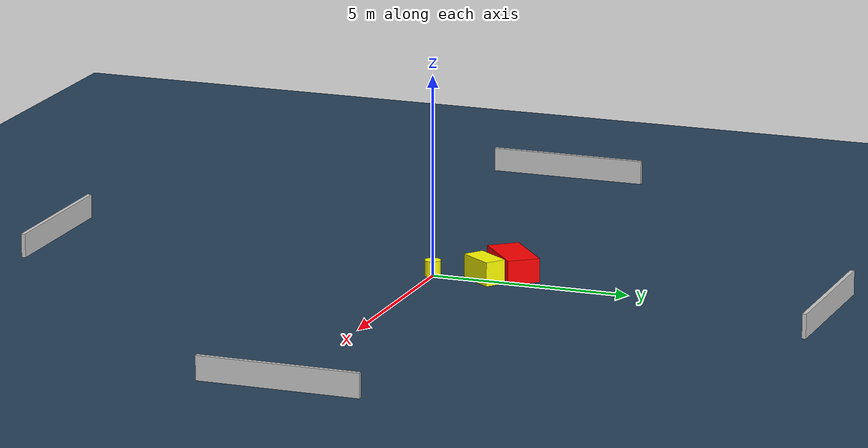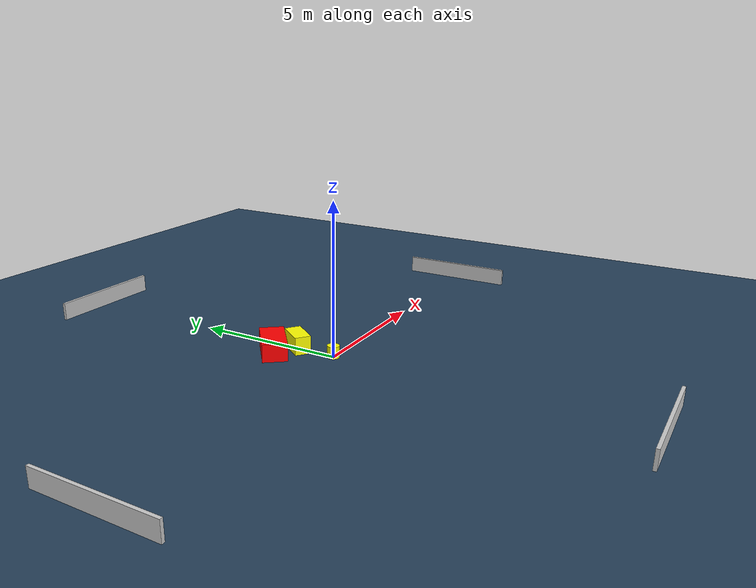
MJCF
<?xml version="1.0" ?>
<mujoco model="generated_environment">
  <option timestep="0.01" integrator="RK4" cone="elliptic"/>
  <default>
    <geom density="1"/>
  </default>
  <asset>
    <texture builtin="gradient" height="3072" name="skybox" rgb1="0.3 0.5 0.7" rgb2="0 0 0" type="skybox" width="512"/>
    <texture builtin="checker" height="300" name="groundplane" rgb1="0.2 0.3 0.4" rgb2="0.1 0.2 0.3" type="2d" width="300"/>
    <material name="groundplane" reflectance="0.2" texrepeat="5 5" texture="groundplane"/>
  </asset>
  <worldbody>
    <light dir="0 0 -1" directional="true" pos="0 0 1.5"/>
    <geom condim="3" friction="0.5 0.005 0.001" material="groundplane" name="floor" pos="0 0 0" size="0 0 0.05" type="plane"/>
    <body name="walls">
      <geom name="wall_1" condim="4" pos="-10.0 0.0 0.3" rgba="0.800000011920929 0.800000011920929 0.800000011920929 1.0" size="0.05 2.0 0.3" type="box"/>
      <geom name="wall_2" condim="4" pos="10.0 0.0 0.3" rgba="0.800000011920929 0.800000011920929 0.800000011920929 1.0" size="0.05 2.0 0.3" type="box"/>
      <geom name="wall_3" condim="4" pos="0.0 -10.0 0.3" rgba="0.800000011920929 0.800000011920929 0.800000011920929 1.0" size="2.0 0.05 0.3" type="box"/>
      <geom name="wall_4" condim="4" pos="0.0 10.0 0.3" rgba="0.800000011920929 0.800000011920929 0.800000011920929 1.0" size="2.0 0.05 0.3" type="box"/>
    </body>
    <body name="robot">
      <joint name="joint_x" type="slide" pos="0 0 0" axis="1 0 0"/>
      <joint name="joint_y" type="slide" pos="0 0 0" axis="0 1 0"/>
      <geom name="robot" type="cylinder" pos="0.0 0.0 0.2" size="0.2 0.2 0.0" mass="5.0" friction="1.0 0.005 0.0001" condim="4" rgba="1.0 1.0 0.0 1.0"/>
    </body>
    <body name="obstacle_1_movable">
      <geom name="obstacle_1_movable" condim="4" pos="-0.034882188146519076 1.3210263704647884 0.3" euler="0 0 143.7656062042891" friction="0.0 0.005 0.001" rgba="1.0 1.0 0.0 1.0" size="0.2689841804840116 0.4860899851482281 0.3" type="box" mass="0.1"/>
      <joint type="free"/>
    </body>
    <body name="obstacle_2_static">
      <geom name="obstacle_2_static" condim="4" pos="-0.6921669379502263 1.8276451905368092 0.3" euler="0 0 38.99451966046844" friction="0.0 0.005 0.001" rgba="1.0 0.0 0.0 1.0" size="0.7634427704837223 0.4052495518286917 0.3" type="box"/>
    </body>
  </worldbody>
  <actuator>
    <motor name="actuator_x" joint="joint_x" gear="1" ctrlrange="-1 1"/>
    <motor name="actuator_y" joint="joint_y" gear="1" ctrlrange="-1 1"/>
  </actuator>
</mujoco>
